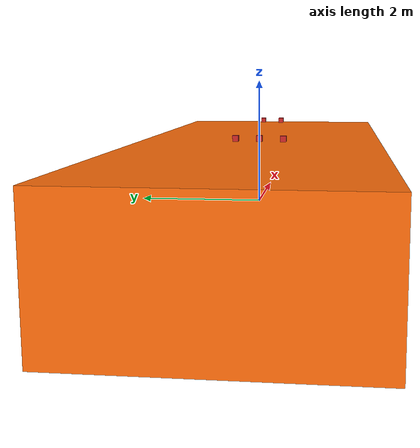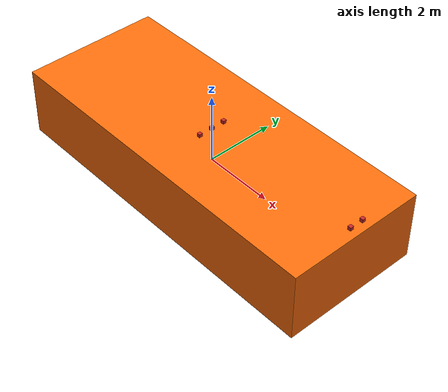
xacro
<?xml version="1.0" ?>
<robot name="bbot" xmlns:xacro="http://www.ros.org/wiki/xacro">

  <!-- Math constants -->
  <xacro:property name="math_pi" value="3.141592653589793" />

  <!-- Math macros -->
  <xacro:macro name="box_inertial" params="mass x y z">
    <inertial>
      <mass value="${mass}" />
      <inertia
        ixx="${mass * (y * y + z * z) / 12.0}" ixy="0.0" ixz="0.0"
        iyy="${mass * (z * z + x * x) / 12.0}" iyz="0.0"
        izz="${mass * (x * x + y * y) / 12.0}" />
    </inertial>
  </xacro:macro>

  <!-- Constants for robot dimensions -->
  <xacro:property name="hull_mass" value="20000.0" />
  <xacro:property name="hull_loa" value="10.0" />
  <xacro:property name="hull_woa" value="4.0" />
  <xacro:property name="hull_doa" value="2.0" />

  <xacro:property name="cam_mass" value="0.1" />
  <xacro:property name="cam_size" value="0.1" />

  <xacro:property name="ray_mass" value="0.1" />
  <xacro:property name="ray_size" value="0.1" />

  <xacro:property name="imu_mass" value="0.1" />
  <xacro:property name="imu_size" value="0.1" />

  <xacro:property name="gps_mass" value="0.1" />
  <xacro:property name="gps_size" value="0.1" />

  <xacro:property name="mag_mass" value="0.1" />
  <xacro:property name="mag_size" value="0.1" />

  <!-- Import Gazebo elements -->
  <xacro:include filename="$(find bbot_description)/urdf/bbot.gazebo" />

  <!-- Import materials -->
  <xacro:include filename="$(find bbot_description)/urdf/materials.xacro" />

  <!-- Base link (main hull) -->
  <link name="base_link">
    <visual>
      <geometry>
        <box size="${hull_loa} ${hull_woa} ${hull_doa}"/>
      </geometry>
      <material name="orange" />
    </visual>

    <collision>
      <geometry>
        <box size="${hull_loa} ${hull_woa} ${hull_doa}"/>
      </geometry>
    </collision>

    <xacro:box_inertial mass="${hull_mass}" x="${hull_loa}" y="${hull_loa}" z="${hull_doa}" />
  </link>

  <!-- Camera -->
  <link name="cam_link">
    <visual>
      <geometry>
        <box size="${cam_size} ${cam_size} ${cam_size}"/>
      </geometry>
      <material name="red" />
    </visual>

    <collision>
      <geometry>
        <box size="${cam_size} ${cam_size} ${cam_size}"/>
      </geometry>
    </collision>

    <xacro:box_inertial mass="${cam_mass}" x="${cam_size}" y="${cam_size}" z="${cam_size}" />
  </link>

  <joint name="cam_joint" type="fixed">
    <axis xyz="0 1 0" />
    <origin xyz="${hull_loa/2 - 0.25} 0 ${hull_doa/2 + cam_size/2}" rpy="0 0 0"/>
    <parent link="base_link"/>
    <child link="cam_link"/>
  </joint>

  <!-- Ray -->
  <link name="ray_link">
    <visual>
      <geometry>
        <box size="${ray_size} ${ray_size} ${ray_size}"/>
      </geometry>
      <material name="red" />
    </visual>

    <collision>
      <geometry>
        <box size="${ray_size} ${ray_size} ${ray_size}"/>
      </geometry>
    </collision>

    <xacro:box_inertial mass="${ray_mass}" x="${ray_size}" y="${ray_size}" z="${ray_size}" />
  </link>

  <joint name="ray_joint" type="fixed">
    <axis xyz="0 1 0" />
    <origin xyz="${hull_loa/2 - 0.25} 0.4 ${hull_doa/2 + ray_size/2}" rpy="0 0 0"/>
    <parent link="base_link"/>
    <child link="ray_link"/>
  </joint>

 <!-- GPS -->
  <link name="gps_link">
    <visual>
      <geometry>
        <box size="${gps_size} ${gps_size} ${gps_size}"/>
      </geometry>
      <material name="red" />
    </visual>

    <collision>
      <geometry>
        <box size="${gps_size} ${gps_size} ${gps_size}"/>
      </geometry>
    </collision>

    <xacro:box_inertial mass="${gps_mass}" x="${gps_size}" y="${gps_size}" z="${gps_size}" />
  </link>

  <joint name="gps_joint" type="fixed">
    <axis xyz="0 1 0" />
    <origin xyz="0 0.4 ${hull_doa/2 + gps_size/2}" rpy="0 0 0"/>
    <parent link="base_link"/>
    <child link="gps_link"/>
  </joint>

 <!-- IMU -->
  <link name="imu_link">
    <visual>
      <geometry>
        <box size="${imu_size} ${imu_size} ${imu_size}"/>
      </geometry>
      <material name="red" />
    </visual>

    <collision>
      <geometry>
        <box size="${imu_size} ${imu_size} ${imu_size}"/>
      </geometry>
    </collision>

    <xacro:box_inertial mass="${imu_mass}" x="${imu_size}" y="${imu_size}" z="${imu_size}" />
  </link>

  <joint name="imu_joint" type="fixed">
    <axis xyz="0 1 0" />
    <origin xyz="0 0 ${hull_doa/2 + imu_size/2}" rpy="0 0 0"/>
    <parent link="base_link"/>
    <child link="imu_link"/>
  </joint>

   <!-- Magnetometer -->
  <link name="mag_link">
    <visual>
      <geometry>
        <box size="${mag_size} ${mag_size} ${mag_size}"/>
      </geometry>
      <material name="red" />
    </visual>

    <collision>
      <geometry>
        <box size="${mag_size} ${mag_size} ${mag_size}"/>
      </geometry>
    </collision>

    <xacro:box_inertial mass="${gps_mass}" x="${mag_size}" y="${mag_size}" z="${mag_size}" />
  </link>

  <joint name="mag_joint" type="fixed">
    <axis xyz="0 1 0" />
    <origin xyz="0 -0.4 ${hull_doa/2 + mag_size/2}" rpy="0 0 0"/>
    <parent link="base_link"/>
    <child link="mag_link"/>
  </joint>
</robot>

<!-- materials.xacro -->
<robot>

  <material name="black">
    <color rgba="0.0 0.0 0.0 1.0"/>
  </material>

  <material name="blue">
    <color rgba="0.0 0.0 0.8 1.0"/>
  </material>

  <material name="orange">
    <color rgba="${255/255} ${108/255} ${10/255} 1.0"/>
  </material>

</robot>
